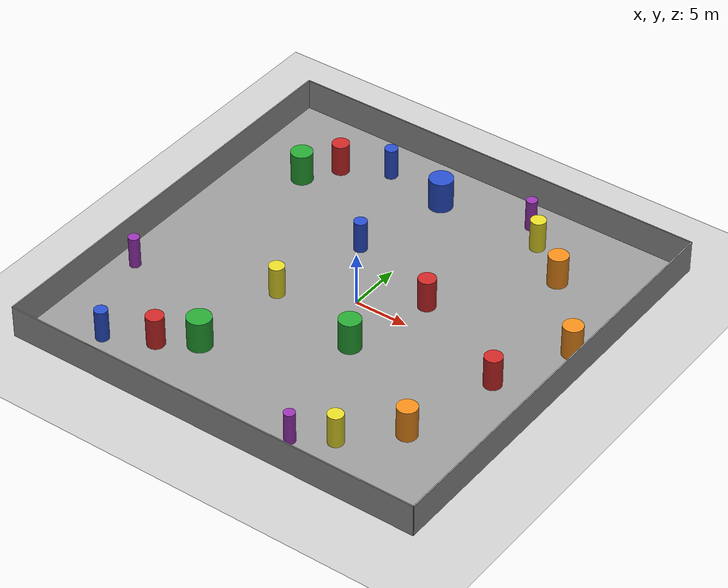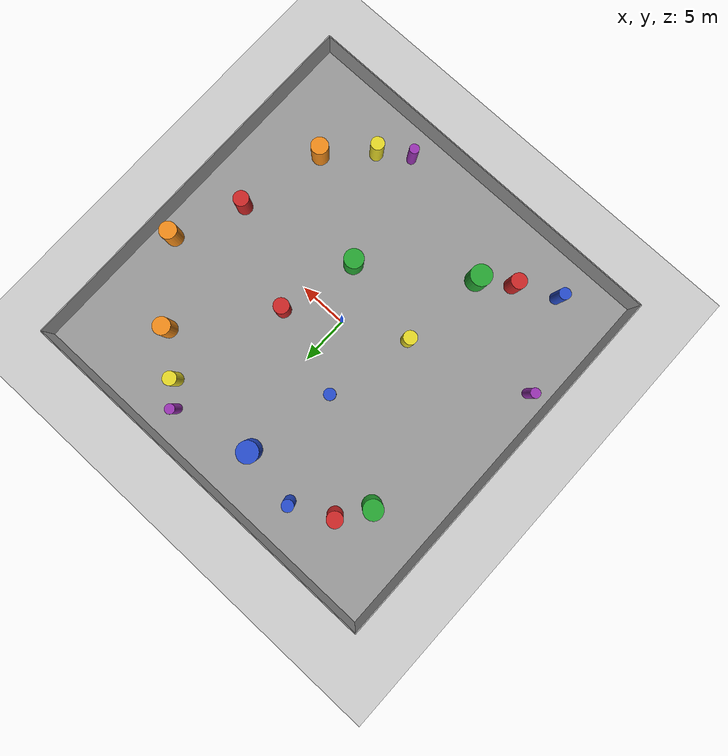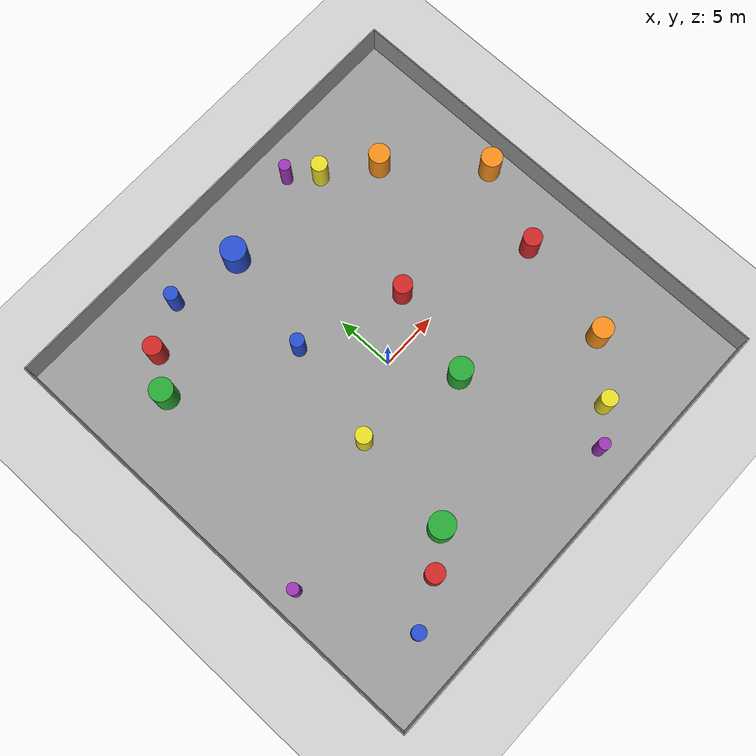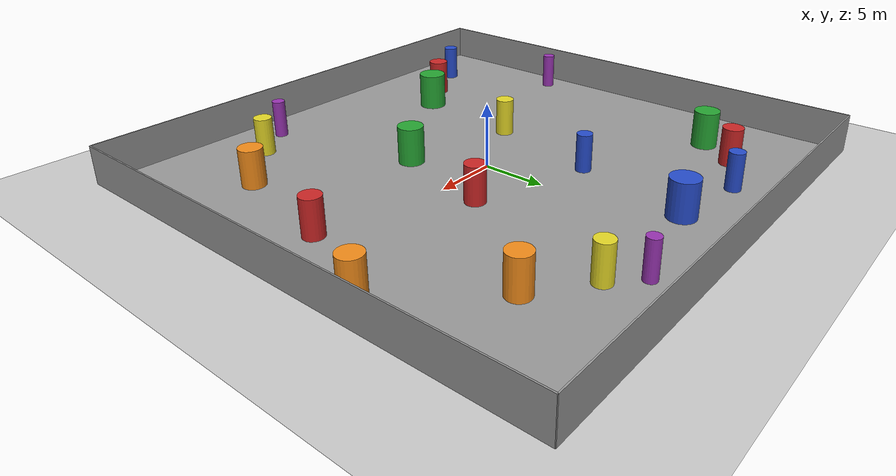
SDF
<?xml version="1.0" ?>
<sdf version="1.5">
  <world name="drone_env">
    <!-- A global light source -->
    <include>
      <uri>model://sun</uri>
    </include>
    <!-- A ground plane -->
    <include>
      <uri>model://ground_plane</uri>
    </include>

    <!-- Custom colored floor -->
    <model name="custom_floor">
      <pose>0 0 0 0 0 0</pose>
      <static>true</static>
      <link name="link">
        <collision name="collision">
          <geometry>
            <box>
              <size>40 40 0.1</size>
            </box>
          </geometry>
        </collision>
        <visual name="visual">
          <geometry>
            <box>
              <size>40 40 0.1</size>
            </box>
          </geometry>
          <material>
            <script>
              <name>Gazebo/Grey</name>
            </script>
          </material>
        </visual>
      </link>
    </model>

    <!-- 40m x 40m walls -->
    <model name="north_wall">
      <pose>0 20 1.5 0 0 0</pose>
      <static>true</static>
      <link name="link">
        <collision name="collision">
          <geometry>
            <box>
              <size>40 0.1 3</size>
            </box>
          </geometry>
        </collision>
        <visual name="visual">
          <geometry>
            <box>
              <size>40 0.1 3</size>
            </box>
          </geometry>
          <material>
            <script>
              <name>Gazebo/Grey</name>
            </script>
          </material>
        </visual>
      </link>
    </model>

    <model name="south_wall">
      <pose>0 -20 1.5 0 0 0</pose>
      <static>true</static>
      <link name="link">
        <collision name="collision">
          <geometry>
            <box>
              <size>40 0.1 3</size>
            </box>
          </geometry>
        </collision>
        <visual name="visual">
          <geometry>
            <box>
              <size>40 0.1 3</size>
            </box>
          </geometry>
          <material>
            <script>
              <name>Gazebo/Grey</name>
            </script>
          </material>
        </visual>
      </link>
    </model>

    <model name="east_wall">
      <pose>20 0 1.5 0 0 0</pose>
      <static>true</static>
      <link name="link">
        <collision name="collision">
          <geometry>
            <box>
              <size>0.1 40 3</size>
            </box>
          </geometry>
        </collision>
        <visual name="visual">
          <geometry>
            <box>
              <size>0.1 40 3</size>
            </box>
          </geometry>
          <material>
            <script>
              <name>Gazebo/Grey</name>
            </script>
          </material>
        </visual>
      </link>
    </model>

    <model name="west_wall">
      <pose>-20 0 1.5 0 0 0</pose>
      <static>true</static>
      <link name="link">
        <collision name="collision">
          <geometry>
            <box>
              <size>0.1 40 3</size>
            </box>
          </geometry>
        </collision>
        <visual name="visual">
          <geometry>
            <box>
              <size>0.1 40 3</size>
            </box>
          </geometry>
          <material>
            <script>
              <name>Gazebo/Grey</name>
            </script>
          </material>
        </visual>
      </link>
    </model>

    <!-- 20个分散的圆柱障碍物 - 避开无人机初始位置 -->

    <!-- 第一区域：左上角 (-15到-5, 10到18) -->
    <model name="cylinder_1">
      <pose>-12 14 1.5 0 0 0</pose>
      <static>true</static>
      <link name="link">
        <collision name="collision">
          <geometry>
            <cylinder>
              <radius>0.8</radius>
              <length>3</length>
            </cylinder>
          </geometry>
        </collision>
        <visual name="visual">
          <geometry>
            <cylinder>
              <radius>0.8</radius>
              <length>3</length>
            </cylinder>
          </geometry>
          <material>
            <script>
              <name>Gazebo/Red</name>
            </script>
          </material>
        </visual>
      </link>
    </model>

    <model name="cylinder_2">
      <pose>-8 16 1.5 0 0 0</pose>
      <static>true</static>
      <link name="link">
        <collision name="collision">
          <geometry>
            <cylinder>
              <radius>0.6</radius>
              <length>3</length>
            </cylinder>
          </geometry>
        </collision>
        <visual name="visual">
          <geometry>
            <cylinder>
              <radius>0.6</radius>
              <length>3</length>
            </cylinder>
          </geometry>
          <material>
            <script>
              <name>Gazebo/Blue</name>
            </script>
          </material>
        </visual>
      </link>
    </model>

    <model name="cylinder_3">
      <pose>-14 11 1.5 0 0 0</pose>
      <static>true</static>
      <link name="link">
        <collision name="collision">
          <geometry>
            <cylinder>
              <radius>1.0</radius>
              <length>3</length>
            </cylinder>
          </geometry>
        </collision>
        <visual name="visual">
          <geometry>
            <cylinder>
              <radius>1.0</radius>
              <length>3</length>
            </cylinder>
          </geometry>
          <material>
            <script>
              <name>Gazebo/Green</name>
            </script>
          </material>
        </visual>
      </link>
    </model>

    <!-- 第二区域：右上角 (5到15, 10到18) -->
    <model name="cylinder_4">
      <pose>8 15 1.5 0 0 0</pose>
      <static>true</static>
      <link name="link">
        <collision name="collision">
          <geometry>
            <cylinder>
              <radius>0.7</radius>
              <length>3</length>
            </cylinder>
          </geometry>
        </collision>
        <visual name="visual">
          <geometry>
            <cylinder>
              <radius>0.7</radius>
              <length>3</length>
            </cylinder>
          </geometry>
          <material>
            <script>
              <name>Gazebo/Yellow</name>
            </script>
          </material>
        </visual>
      </link>
    </model>

    <model name="cylinder_5">
      <pose>12 12 1.5 0 0 0</pose>
      <static>true</static>
      <link name="link">
        <collision name="collision">
          <geometry>
            <cylinder>
              <radius>0.9</radius>
              <length>3</length>
            </cylinder>
          </geometry>
        </collision>
        <visual name="visual">
          <geometry>
            <cylinder>
              <radius>0.9</radius>
              <length>3</length>
            </cylinder>
          </geometry>
          <material>
            <script>
              <name>Gazebo/Orange</name>
            </script>
          </material>
        </visual>
      </link>
    </model>

    <model name="cylinder_6">
      <pose>6 17 1.5 0 0 0</pose>
      <static>true</static>
      <link name="link">
        <collision name="collision">
          <geometry>
            <cylinder>
              <radius>0.5</radius>
              <length>3</length>
            </cylinder>
          </geometry>
        </collision>
        <visual name="visual">
          <geometry>
            <cylinder>
              <radius>0.5</radius>
              <length>3</length>
            </cylinder>
          </geometry>
          <material>
            <script>
              <name>Gazebo/Purple</name>
            </script>
          </material>
        </visual>
      </link>
    </model>

    <!-- 第三区域：左下角 (-15到-5, -18到-10) -->
    <model name="cylinder_7">
      <pose>-10 -14 1.5 0 0 0</pose>
      <static>true</static>
      <link name="link">
        <collision name="collision">
          <geometry>
            <cylinder>
              <radius>0.8</radius>
              <length>3</length>
            </cylinder>
          </geometry>
        </collision>
        <visual name="visual">
          <geometry>
            <cylinder>
              <radius>0.8</radius>
              <length>3</length>
            </cylinder>
          </geometry>
          <material>
            <script>
              <name>Gazebo/Red</name>
            </script>
          </material>
        </visual>
      </link>
    </model>

    <model name="cylinder_8">
      <pose>-14 -16 1.5 0 0 0</pose>
      <static>true</static>
      <link name="link">
        <collision name="collision">
          <geometry>
            <cylinder>
              <radius>0.6</radius>
              <length>3</length>
            </cylinder>
          </geometry>
        </collision>
        <visual name="visual">
          <geometry>
            <cylinder>
              <radius>0.6</radius>
              <length>3</length>
            </cylinder>
          </geometry>
          <material>
            <script>
              <name>Gazebo/Blue</name>
            </script>
          </material>
        </visual>
      </link>
    </model>

    <model name="cylinder_9">
      <pose>-7 -12 1.5 0 0 0</pose>
      <static>true</static>
      <link name="link">
        <collision name="collision">
          <geometry>
            <cylinder>
              <radius>1.1</radius>
              <length>3</length>
            </cylinder>
          </geometry>
        </collision>
        <visual name="visual">
          <geometry>
            <cylinder>
              <radius>1.1</radius>
              <length>3</length>
            </cylinder>
          </geometry>
          <material>
            <script>
              <name>Gazebo/Green</name>
            </script>
          </material>
        </visual>
      </link>
    </model>

    <!-- 第四区域：右下角 (5到15, -18到-10) -->
    <model name="cylinder_10">
      <pose>9 -15 1.5 0 0 0</pose>
      <static>true</static>
      <link name="link">
        <collision name="collision">
          <geometry>
            <cylinder>
              <radius>0.7</radius>
              <length>3</length>
            </cylinder>
          </geometry>
        </collision>
        <visual name="visual">
          <geometry>
            <cylinder>
              <radius>0.7</radius>
              <length>3</length>
            </cylinder>
          </geometry>
          <material>
            <script>
              <name>Gazebo/Yellow</name>
            </script>
          </material>
        </visual>
      </link>
    </model>

    <model name="cylinder_11">
      <pose>13 -11 1.5 0 0 0</pose>
      <static>true</static>
      <link name="link">
        <collision name="collision">
          <geometry>
            <cylinder>
              <radius>0.9</radius>
              <length>3</length>
            </cylinder>
          </geometry>
        </collision>
        <visual name="visual">
          <geometry>
            <cylinder>
              <radius>0.9</radius>
              <length>3</length>
            </cylinder>
          </geometry>
          <material>
            <script>
              <name>Gazebo/Orange</name>
            </script>
          </material>
        </visual>
      </link>
    </model>

    <model name="cylinder_12">
      <pose>6 -17 1.5 0 0 0</pose>
      <static>true</static>
      <link name="link">
        <collision name="collision">
          <geometry>
            <cylinder>
              <radius>0.5</radius>
              <length>3</length>
            </cylinder>
          </geometry>
        </collision>
        <visual name="visual">
          <geometry>
            <cylinder>
              <radius>0.5</radius>
              <length>3</length>
            </cylinder>
          </geometry>
          <material>
            <script>
              <name>Gazebo/Purple</name>
            </script>
          </material>
        </visual>
      </link>
    </model>

    <!-- 第五区域：中央区域 (-8到8, -8到8) 避开无人机初始位置 -->
    <model name="cylinder_13">
      <pose>5 3 1.5 0 0 0</pose>
      <static>true</static>
      <link name="link">
        <collision name="collision">
          <geometry>
            <cylinder>
              <radius>0.8</radius>
              <length>3</length>
            </cylinder>
          </geometry>
        </collision>
        <visual name="visual">
          <geometry>
            <cylinder>
              <radius>0.8</radius>
              <length>3</length>
            </cylinder>
          </geometry>
          <material>
            <script>
              <name>Gazebo/Red</name>
            </script>
          </material>
        </visual>
      </link>
    </model>

    <model name="cylinder_14">
      <pose>-4 6 1.5 0 0 0</pose>
      <static>true</static>
      <link name="link">
        <collision name="collision">
          <geometry>
            <cylinder>
              <radius>0.6</radius>
              <length>3</length>
            </cylinder>
          </geometry>
        </collision>
        <visual name="visual">
          <geometry>
            <cylinder>
              <radius>0.6</radius>
              <length>3</length>
            </cylinder>
          </geometry>
          <material>
            <script>
              <name>Gazebo/Blue</name>
            </script>
          </material>
        </visual>
      </link>
    </model>

    <model name="cylinder_15">
      <pose>3 -5 1.5 0 0 0</pose>
      <static>true</static>
      <link name="link">
        <collision name="collision">
          <geometry>
            <cylinder>
              <radius>1.0</radius>
              <length>3</length>
            </cylinder>
          </geometry>
        </collision>
        <visual name="visual">
          <geometry>
            <cylinder>
              <radius>1.0</radius>
              <length>3</length>
            </cylinder>
          </geometry>
          <material>
            <script>
              <name>Gazebo/Green</name>
            </script>
          </material>
        </visual>
      </link>
    </model>

    <model name="cylinder_16">
      <pose>-6 -3 1.5 0 0 0</pose>
      <static>true</static>
      <link name="link">
        <collision name="collision">
          <geometry>
            <cylinder>
              <radius>0.7</radius>
              <length>3</length>
            </cylinder>
          </geometry>
        </collision>
        <visual name="visual">
          <geometry>
            <cylinder>
              <radius>0.7</radius>
              <length>3</length>
            </cylinder>
          </geometry>
          <material>
            <script>
              <name>Gazebo/Yellow</name>
            </script>
          </material>
        </visual>
      </link>
    </model>

    <!-- 第六区域：边缘障碍物 -->
    <model name="cylinder_17">
      <pose>18 5 1.5 0 0 0</pose>
      <static>true</static>
      <link name="link">
        <collision name="collision">
          <geometry>
            <cylinder>
              <radius>0.9</radius>
              <length>3</length>
            </cylinder>
          </geometry>
        </collision>
        <visual name="visual">
          <geometry>
            <cylinder>
              <radius>0.9</radius>
              <length>3</length>
            </cylinder>
          </geometry>
          <material>
            <script>
              <name>Gazebo/Orange</name>
            </script>
          </material>
        </visual>
      </link>
    </model>

    <model name="cylinder_18">
      <pose>-18 -7 1.5 0 0 0</pose>
      <static>true</static>
      <link name="link">
        <collision name="collision">
          <geometry>
            <cylinder>
              <radius>0.5</radius>
              <length>3</length>
            </cylinder>
          </geometry>
        </collision>
        <visual name="visual">
          <geometry>
            <cylinder>
              <radius>0.5</radius>
              <length>3</length>
            </cylinder>
          </geometry>
          <material>
            <script>
              <name>Gazebo/Purple</name>
            </script>
          </material>
        </visual>
      </link>
    </model>

    <model name="cylinder_19">
      <pose>15 -2 1.5 0 0 0</pose>
      <static>true</static>
      <link name="link">
        <collision name="collision">
          <geometry>
            <cylinder>
              <radius>0.8</radius>
              <length>3</length>
            </cylinder>
          </geometry>
        </collision>
        <visual name="visual">
          <geometry>
            <cylinder>
              <radius>0.8</radius>
              <length>3</length>
            </cylinder>
          </geometry>
          <material>
            <script>
              <name>Gazebo/Red</name>
            </script>
          </material>
        </visual>
      </link>
    </model>

    <model name="cylinder_20">
      <pose>-2 15 1.5 0 0 0</pose>
      <static>true</static>
      <link name="link">
        <collision name="collision">
          <geometry>
            <cylinder>
              <radius>1.1</radius>
              <length>3</length>
            </cylinder>
          </geometry>
        </collision>
        <visual name="visual">
          <geometry>
            <cylinder>
              <radius>1.1</radius>
              <length>3</length>
            </cylinder>
          </geometry>
          <material>
            <script>
              <name>Gazebo/Blue</name>
            </script>
          </material>
        </visual>
      </link>
    </model>

    <physics name='default_physics' default='0' type='ode'>
      <gravity>0 0 -9.8066</gravity>
      <ode>
        <solver>
          <type>quick</type>
          <iters>10</iters>
          <sor>1.3</sor>
          <use_dynamic_moi_rescaling>0</use_dynamic_moi_rescaling>
        </solver>
        <constraints>
          <cfm>0</cfm>
          <erp>0.2</erp>
          <contact_max_correcting_vel>100</contact_max_correcting_vel>
          <contact_surface_layer>0.001</contact_surface_layer>
        </constraints>
      </ode>
      <max_step_size>0.004</max_step_size>
      <real_time_factor>1</real_time_factor>
      <real_time_update_rate>250</real_time_update_rate>
      <magnetic_field>6.0e-6 2.3e-5 -4.2e-5</magnetic_field>
    </physics>
  </world>
</sdf>
